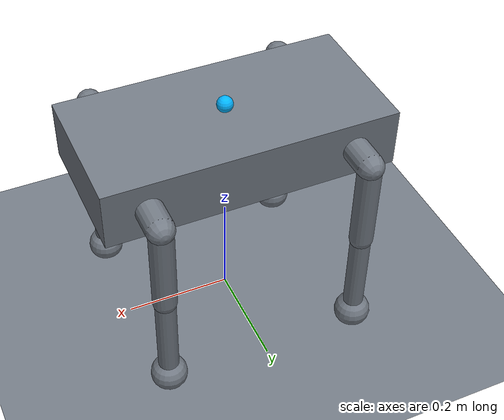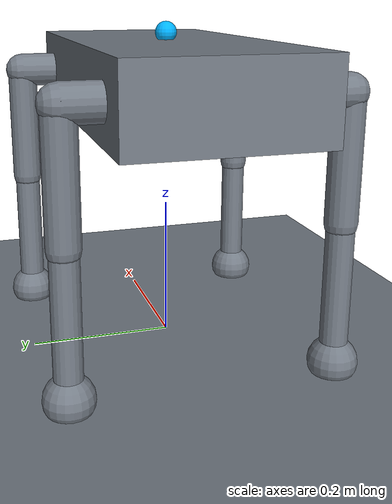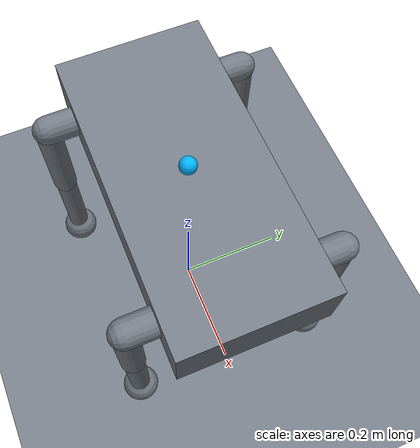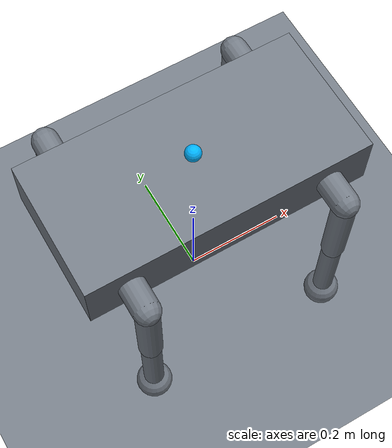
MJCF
<mujoco model="qrics_mini_quadruped">
  <compiler angle="radian" coordinate="local" inertiafromgeom="true" autolimits="true"/>
  <option timestep="0.002" gravity="0 0 -9.81" integrator="RK4" cone="pyramidal"/>
  <size njmax="400" nconmax="100"/>

  <default>
    <joint damping="1.6" armature="0.015" frictionloss="0.04"/>
    <geom contype="1" conaffinity="1" condim="3" friction="0.9 0.02 0.002" density="450" rgba="0.45 0.48 0.52 1"/>
    <position kp="32" kv="5" ctrllimited="true"/>
  </default>

  <asset>
    <texture name="checker" type="2d" builtin="checker" width="128" height="128" rgb1="0.28 0.30 0.32" rgb2="0.36 0.38 0.40"/>
    <material name="floor_mat" texture="checker" texrepeat="4 4" reflectance="0.15"/>
    <material name="base_mat" rgba="0.12 0.16 0.22 1"/>
    <material name="leg_mat" rgba="0.23 0.33 0.46 1"/>
    <material name="foot_mat" rgba="0.06 0.06 0.06 1"/>
    <material name="obstacle_mat" rgba="0.58 0.33 0.18 1"/>
  </asset>

  <worldbody>
    <light name="key_light" pos="0 -3 4" dir="0 1 -1" diffuse="0.9 0.9 0.9" specular="0.2 0.2 0.2" directional="true"/>
    <camera name="demo_camera" pos="2.1 -2.2 1.35" xyaxes="0.74 0.67 0 -0.26 0.29 0.92"/>
    <geom name="floor" type="plane" size="8 8 0.1" material="floor_mat" friction="1.15 0.04 0.004"/>

    <body name="base" pos="0 0 0.38">
      <freejoint name="base_freejoint"/>
      <geom name="base_geom" type="box" size="0.27 0.13 0.055" material="base_mat" mass="4.2"/>
      <site name="imu_site" pos="0 0 0.065" size="0.015" rgba="0 0.7 1 1"/>

      <body name="fl_hip" pos="0.19 0.105 0">
        <joint name="fl_hip_joint" type="hinge" axis="1 0 0" limited="true" range="-0.65 0.65" damping="1.0"/>
        <geom name="fl_hip_geom" type="capsule" fromto="0 0 0 0 0.075 0" size="0.025" material="leg_mat" mass="0.18"/>
        <body name="fl_thigh" pos="0 0.075 0">
          <joint name="fl_thigh_joint" type="hinge" axis="0 1 0" limited="true" range="-1.30 1.25" damping="1.3"/>
          <geom name="fl_thigh_geom" type="capsule" fromto="0 0 0 0 0 -0.17" size="0.022" material="leg_mat" mass="0.24"/>
          <body name="fl_calf" pos="0 0 -0.17">
            <joint name="fl_calf_joint" type="hinge" axis="0 1 0" limited="true" range="-2.10 0.10" damping="1.1"/>
            <geom name="fl_calf_geom" type="capsule" fromto="0 0 0 0 0 -0.18" size="0.019" material="leg_mat" mass="0.18"/>
            <geom name="fl_foot" type="sphere" pos="0 0 -0.195" size="0.034" material="foot_mat" mass="0.08" friction="1.1 0.03 0.003"/>
          </body>
        </body>
      </body>

      <body name="fr_hip" pos="0.19 -0.105 0">
        <joint name="fr_hip_joint" type="hinge" axis="1 0 0" limited="true" range="-0.65 0.65" damping="1.0"/>
        <geom name="fr_hip_geom" type="capsule" fromto="0 0 0 0 -0.075 0" size="0.025" material="leg_mat" mass="0.18"/>
        <body name="fr_thigh" pos="0 -0.075 0">
          <joint name="fr_thigh_joint" type="hinge" axis="0 1 0" limited="true" range="-1.30 1.25" damping="1.3"/>
          <geom name="fr_thigh_geom" type="capsule" fromto="0 0 0 0 0 -0.17" size="0.022" material="leg_mat" mass="0.24"/>
          <body name="fr_calf" pos="0 0 -0.17">
            <joint name="fr_calf_joint" type="hinge" axis="0 1 0" limited="true" range="-2.10 0.10" damping="1.1"/>
            <geom name="fr_calf_geom" type="capsule" fromto="0 0 0 0 0 -0.18" size="0.019" material="leg_mat" mass="0.18"/>
            <geom name="fr_foot" type="sphere" pos="0 0 -0.195" size="0.034" material="foot_mat" mass="0.08" friction="1.1 0.03 0.003"/>
          </body>
        </body>
      </body>

      <body name="rl_hip" pos="-0.19 0.105 0">
        <joint name="rl_hip_joint" type="hinge" axis="1 0 0" limited="true" range="-0.65 0.65" damping="1.0"/>
        <geom name="rl_hip_geom" type="capsule" fromto="0 0 0 0 0.075 0" size="0.025" material="leg_mat" mass="0.18"/>
        <body name="rl_thigh" pos="0 0.075 0">
          <joint name="rl_thigh_joint" type="hinge" axis="0 1 0" limited="true" range="-1.30 1.25" damping="1.3"/>
          <geom name="rl_thigh_geom" type="capsule" fromto="0 0 0 0 0 -0.17" size="0.022" material="leg_mat" mass="0.24"/>
          <body name="rl_calf" pos="0 0 -0.17">
            <joint name="rl_calf_joint" type="hinge" axis="0 1 0" limited="true" range="-2.10 0.10" damping="1.1"/>
            <geom name="rl_calf_geom" type="capsule" fromto="0 0 0 0 0 -0.18" size="0.019" material="leg_mat" mass="0.18"/>
            <geom name="rl_foot" type="sphere" pos="0 0 -0.195" size="0.034" material="foot_mat" mass="0.08" friction="1.1 0.03 0.003"/>
          </body>
        </body>
      </body>

      <body name="rr_hip" pos="-0.19 -0.105 0">
        <joint name="rr_hip_joint" type="hinge" axis="1 0 0" limited="true" range="-0.65 0.65" damping="1.0"/>
        <geom name="rr_hip_geom" type="capsule" fromto="0 0 0 0 -0.075 0" size="0.025" material="leg_mat" mass="0.18"/>
        <body name="rr_thigh" pos="0 -0.075 0">
          <joint name="rr_thigh_joint" type="hinge" axis="0 1 0" limited="true" range="-1.30 1.25" damping="1.3"/>
          <geom name="rr_thigh_geom" type="capsule" fromto="0 0 0 0 0 -0.17" size="0.022" material="leg_mat" mass="0.24"/>
          <body name="rr_calf" pos="0 0 -0.17">
            <joint name="rr_calf_joint" type="hinge" axis="0 1 0" limited="true" range="-2.10 0.10" damping="1.1"/>
            <geom name="rr_calf_geom" type="capsule" fromto="0 0 0 0 0 -0.18" size="0.019" material="leg_mat" mass="0.18"/>
            <geom name="rr_foot" type="sphere" pos="0 0 -0.195" size="0.034" material="foot_mat" mass="0.08" friction="1.1 0.03 0.003"/>
          </body>
        </body>
      </body>
    </body>
  </worldbody>

  <actuator>
    <position name="fl_hip_pos" joint="fl_hip_joint" ctrlrange="-0.65 0.65" kp="32" kv="5"/>
    <position name="fl_thigh_pos" joint="fl_thigh_joint" ctrlrange="-1.30 1.25" kp="34" kv="5"/>
    <position name="fl_calf_pos" joint="fl_calf_joint" ctrlrange="-2.10 0.10" kp="30" kv="4"/>
    <position name="fr_hip_pos" joint="fr_hip_joint" ctrlrange="-0.65 0.65" kp="32" kv="5"/>
    <position name="fr_thigh_pos" joint="fr_thigh_joint" ctrlrange="-1.30 1.25" kp="34" kv="5"/>
    <position name="fr_calf_pos" joint="fr_calf_joint" ctrlrange="-2.10 0.10" kp="30" kv="4"/>
    <position name="rl_hip_pos" joint="rl_hip_joint" ctrlrange="-0.65 0.65" kp="32" kv="5"/>
    <position name="rl_thigh_pos" joint="rl_thigh_joint" ctrlrange="-1.30 1.25" kp="34" kv="5"/>
    <position name="rl_calf_pos" joint="rl_calf_joint" ctrlrange="-2.10 0.10" kp="30" kv="4"/>
    <position name="rr_hip_pos" joint="rr_hip_joint" ctrlrange="-0.65 0.65" kp="32" kv="5"/>
    <position name="rr_thigh_pos" joint="rr_thigh_joint" ctrlrange="-1.30 1.25" kp="34" kv="5"/>
    <position name="rr_calf_pos" joint="rr_calf_joint" ctrlrange="-2.10 0.10" kp="30" kv="4"/>
  </actuator>
</mujoco>
